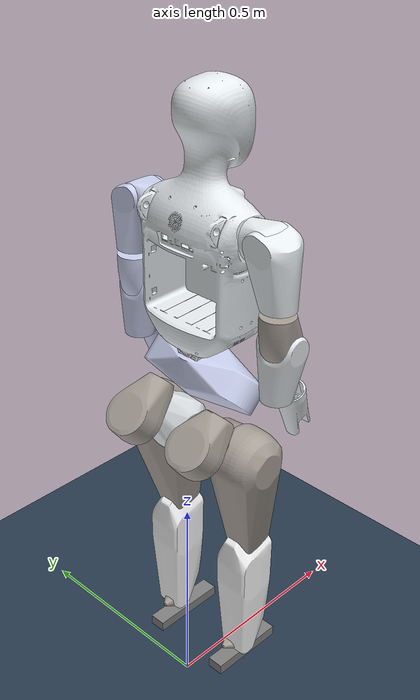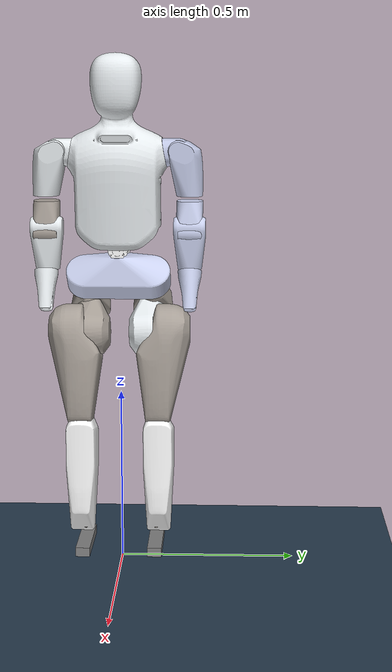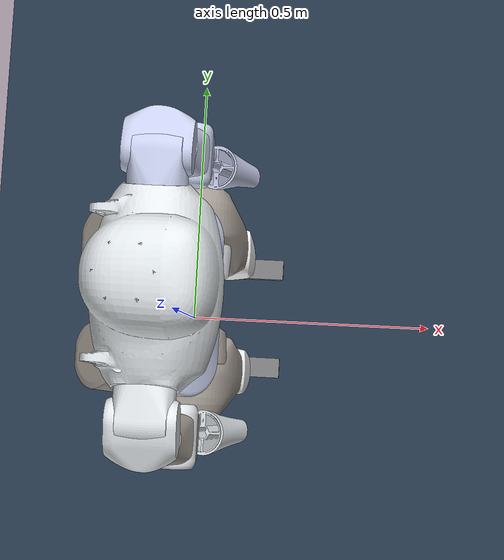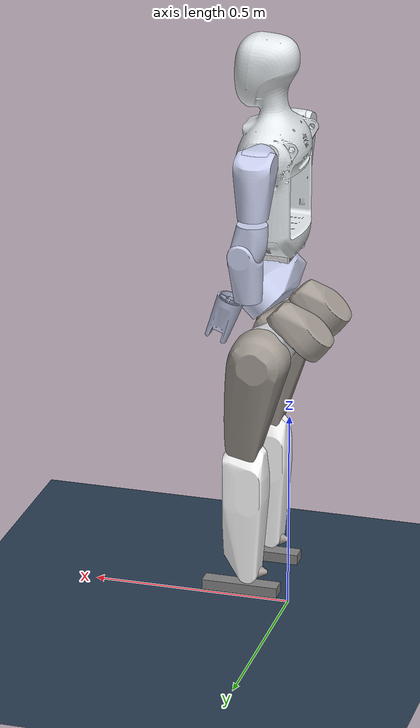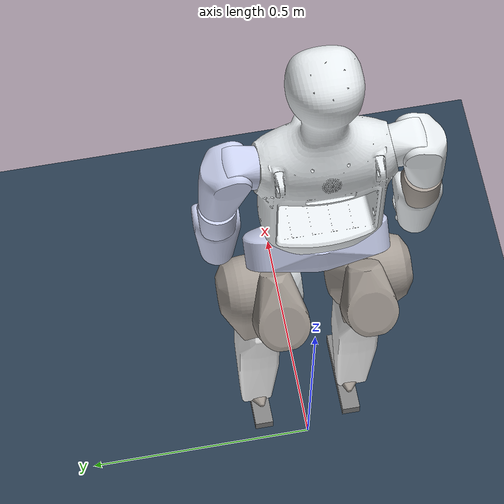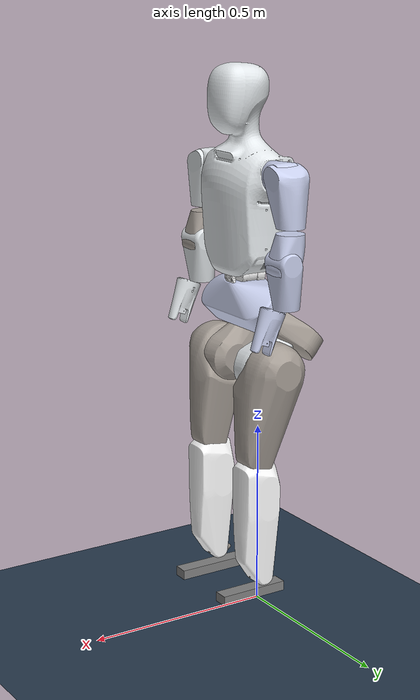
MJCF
<mujoco model="e1_v2_0826">
  <compiler angle="radian" meshdir="../meshes/"/>

  <default>
    <joint damping="0.001" armature="0.005" frictionloss="0.1"/>
  </default>

  <asset>
    <texture type="skybox" builtin="gradient" rgb1="0.3 0.5 0.7" rgb2="0 0 0" width="512" height="512"/>
    <texture name="texplane" type="2d" builtin="checker" rgb1=".2 .3 .4" rgb2=".1 0.15 0.2"
        width="512" height="512" mark="cross" markrgb=".8 .8 .8"/>

    <material name="matplane" reflectance="0." texture="texplane" texrepeat="1 1" texuniform="true"/>

    <mesh name="base_link" file="base_link.STL"/>
    <mesh name="waist_yaw_link" file="waist_yaw_link.STL"/>
    <mesh name="waist_roll_link" file="waist_roll_link.STL"/>
    <mesh name="l_arm_shoulder_pitch_link" file="l_arm_shoulder_pitch_link.STL"/>
    <mesh name="l_arm_shoulder_roll_link" file="l_arm_shoulder_roll_link.STL"/>
    <mesh name="l_arm_shoulder_yaw_link" file="l_arm_shoulder_yaw_link.STL"/>
    <mesh name="l_arm_elbow_pitch_link" file="l_arm_elbow_pitch_link.STL"/>
    <mesh name="l_arm_elbow_yaw_link" file="l_arm_elbow_yaw_link.STL"/>
    <mesh name="r_arm_shoulder_pitch_link" file="r_arm_shoulder_pitch_link.STL"/>
    <mesh name="r_arm_shoulder_roll_link" file="r_arm_shoulder_roll_link.STL"/>
    <mesh name="r_arm_shoulder_yaw_link" file="r_arm_shoulder_yaw_link.STL"/>
    <mesh name="r_arm_elbow_pitch_link" file="r_arm_elbow_pitch_link.STL"/>
    <mesh name="r_arm_elbow_yaw_link" file="r_arm_elbow_yaw_link.STL"/>
    <mesh name="l_leg_hip_yaw_link" file="l_leg_hip_yaw_link.STL"/>
    <mesh name="l_leg_hip_roll_link" file="l_leg_hip_roll_link.STL"/>
    <mesh name="l_leg_hip_pitch_link" file="l_leg_hip_pitch_link.STL"/>
    <mesh name="l_leg_knee_link" file="l_leg_knee_link.STL"/>
    <mesh name="l_leg_ankle_pitch_link" file="l_leg_ankle_pitch_link.STL"/>
    <mesh name="l_leg_ankle_roll_link" file="l_leg_ankle_roll_link.STL"/>
    <mesh name="r_leg_hip_yaw_link" file="r_leg_hip_yaw_link.STL"/>
    <mesh name="r_leg_hip_roll_link" file="r_leg_hip_roll_link.STL"/>
    <mesh name="r_leg_hip_pitch_link" file="r_leg_hip_pitch_link.STL"/>
    <mesh name="r_leg_knee_link" file="r_leg_knee_link.STL"/>
    <mesh name="r_leg_ankle_pitch_link" file="r_leg_ankle_pitch_link.STL"/>
    <mesh name="r_leg_ankle_roll_link" file="r_leg_ankle_roll_link.STL"/>
  </asset>

  <worldbody>
    <light directional="true" diffuse=".4 .4 .4" specular="0.1 0.1 0.1" pos="0 0 5.0" dir="0 0 -1" castshadow="false"/>
    <light directional="true" diffuse=".6 .6 .6" specular="0.2 0.2 0.2" pos="0 0 4" dir="0 0 -1"/>
    <geom name="ground" type="plane" size="0 0 1" pos="0.001 0 0" quat="1 0 0 0" material="matplane" condim="1" conaffinity='15'/>

    <body name="base_link" pos='0.0 0 0.85'>
      <inertial pos="0.045615 0.00032608 -0.0032429" quat="0.65424 0.660369 -0.259353 0.261953" mass="2.6129" diaginertia="0.00744182 0.00566935 0.00257423"/>
      <geom type="mesh" rgba="0.79216 0.81961 0.93333 1" mesh="base_link"/>
      <freejoint name="root" />
      <site name='imu' size='0.01' pos='0.0 0 0.0'/>

      <body name="l_leg_hip_yaw_link" pos="0.026525 0.090371 -0.027966" quat="0.92387 0.00181982 0.382678 0.00439307">
        <inertial pos="-0.01683 2.7526e-05 -0.062092" quat="0.999962 0.00828307 -0.00276939 -0.000263303" mass="1.2993" diaginertia="0.00217413 0.00126313 0.00115234"/>
        <joint name="l_leg_hip_yaw_joint" pos="0 0 0" axis="0 0 1" range="-0.7 0.93" actuatorfrcrange="-90 90"/>
        <geom type="mesh" rgba="0.65098 0.61961 0.58824 1" mesh="l_leg_hip_yaw_link"/>
        <body name="l_leg_hip_roll_link" pos="0.007 0 -0.08">
          <inertial pos="0.079567 -0.016381 -8.1494e-05" quat="0.493197 0.503538 0.505463 0.497708" mass="1.8503" diaginertia="0.00376549 0.00231015 0.00180926"/>
          <joint name="l_leg_hip_roll_joint" pos="0 0 0" axis="1 0 0" range="-0.7 0.61" actuatorfrcrange="-90 90"/>
          <geom type="mesh" rgba="0.89804 0.91765 0.92941 1" mesh="l_leg_hip_roll_link"/>
          <body name="l_leg_hip_pitch_link" pos="0.094 0 0" quat="0.923869 -0.00181973 -0.38268 -0.00439321">
            <inertial pos="0.011507 0.04474 -0.037718" quat="0.707906 -0.0785236 -0.0580346 0.699525" mass="3.5442" diaginertia="0.0183303 0.0152356 0.00375747"/>
            <joint name="l_leg_hip_pitch_joint" pos="0 0 0" axis="0 1 0" range="-1.48 0.87" actuatorfrcrange="-150 150"/>
            <geom type="mesh" rgba="0.65098 0.61961 0.58824 1" mesh="l_leg_hip_pitch_link"/>
            <body name="l_leg_knee_link" pos="0.022273 0.0018581 -0.25402">
              <inertial pos="0.012366 0.012267 -0.12535" quat="0.701176 -0.00640104 -0.00224653 0.712956" mass="1.9982" diaginertia="0.0132255 0.0129657 0.000901"/>
              <joint name="l_leg_knee_joint" pos="0 0 0" axis="0 1 0" range="0 2.36" actuatorfrcrange="-150 150"/>
              <geom type="mesh" rgba="1 1 1 1" mesh="l_leg_knee_link"/>
              <body name="l_leg_ankle_pitch_link" pos="0 0.011101 -0.31494">
                <inertial pos="-0.0042459 -2.9621e-05 0.0001542" quat="-0.00474517 0.704254 -9.92728e-06 0.709932" mass="0.13094" diaginertia="2.88453e-05 2.1919e-05 1.37787e-05"/>
                <joint name="l_leg_ankle_pitch_joint" pos="0 0 0" axis="0 1 0" range="-1.01 0.42" actuatorfrcrange="-140 140"/>
                <geom type="mesh" rgba="0.65098 0.61961 0.58824 1" mesh="l_leg_ankle_pitch_link"/>
                <body name="l_leg_ankle_roll_link">
                  <inertial pos="0.015069 0.00033786 -0.034836" quat="-0.00468015 0.707465 7.0167e-05 0.706733" mass="0.66053" diaginertia="0.0012586 0.00118304 0.000240326"/>
                  <joint name="l_leg_ankle_roll_joint" pos="0 0 0" axis="1 0 0" range="-0.26 0.26" actuatorfrcrange="-70 70"/>
                  <geom type="box" size="0.095 0.02 0.013" pos="0.028 0 -0.045"/>
                </body>
              </body>
            </body>
          </body>
        </body>
      </body>
      <body name="r_leg_hip_yaw_link" pos="0.027735 -0.0896213 -0.0291765" quat="0.923869 0.00181973 0.382679 0.00439322">
        <inertial pos="-0.01683 -2.7533e-05 -0.062087" quat="0.999962 -0.00828307 -0.00276939 0.000263303" mass="1.2993" diaginertia="0.00217413 0.00126313 0.00115234"/>
        <joint name="r_leg_hip_yaw_joint" pos="0 0 0" axis="0 0 1" range="-0.93 0.7" actuatorfrcrange="-90 90"/>
        <geom type="mesh" rgba="0.65098 0.61961 0.58824 1" mesh="r_leg_hip_yaw_link"/>
        <body name="r_leg_hip_roll_link" pos="0.007 0 -0.08">
          <inertial pos="0.079567 0.016381 7.4214e-05" quat="0.497708 0.505463 0.503538 0.493197" mass="1.8503" diaginertia="0.00376549 0.00231015 0.00180926"/>
          <joint name="r_leg_hip_roll_joint" pos="0 0 0" axis="1 0 0" range="-0.61 0.7" actuatorfrcrange="-90 90"/>
          <geom type="mesh" rgba="0.65098 0.61961 0.58824 1" mesh="r_leg_hip_roll_link"/>
          <body name="r_leg_hip_pitch_link" pos="0.094 0 0" quat="0.923864 -0.00363828 -0.382602 -0.00878529">
            <inertial pos="0.012103 -0.044077 -0.038304" quat="0.699525 -0.0580346 -0.0785236 0.707906" mass="3.5442" diaginertia="0.0183303 0.0152356 0.00375747"/>
            <joint name="r_leg_hip_pitch_joint" pos="0 0 0" axis="0 1 0" range="-1.48 0.87" actuatorfrcrange="-150 150"/>
            <geom type="mesh" rgba="0.65098 0.61961 0.58824 1" mesh="r_leg_hip_pitch_link"/>
            <body name="r_leg_knee_link" pos="0.022273 0.0018581 -0.25402">
              <inertial pos="0.012518 -0.010412 -0.1255" quat="0.712956 -0.00224653 -0.00640104 0.701176" mass="1.9982" diaginertia="0.0132255 0.0129657 0.000901"/>
              <joint name="r_leg_knee_joint" pos="0 0 0" axis="0 1 0" range="0 2.36" actuatorfrcrange="-150 150"/>
              <geom type="mesh" rgba="1 1 1 1" mesh="r_leg_knee_link"/>
              <body name="r_leg_ankle_pitch_link" pos="0 -0.0068638 -0.31505">
                <inertial pos="-0.0042459 -2.9539e-05 0.0001483" quat="0.00474517 0.704254 9.92728e-06 0.709932" mass="0.13094" diaginertia="2.88453e-05 2.1919e-05 1.37787e-05"/>
                <joint name="r_leg_ankle_pitch_joint" pos="0 0 0" axis="0 1 0" range="-1.01 0.42" actuatorfrcrange="-140 140"/>
                <geom type="mesh" rgba="0.65098 0.61961 0.58824 1" mesh="r_leg_ankle_pitch_link"/>
                <body name="r_leg_ankle_roll_link">
                  <inertial pos="0.015069 0.00033325 -0.034836" quat="0.00468015 0.707465 -7.0167e-05 0.706733" mass="0.66053" diaginertia="0.0012586 0.00118304 0.000240326"/>
                  <joint name="r_leg_ankle_roll_joint" pos="0 0 0" axis="1 0 0" range="-0.26 0.26" actuatorfrcrange="-70 70"/>
                  <geom type="box" size="0.095 0.02 0.013" pos="0.028 0 -0.045"/>
                </body>
              </body>
            </body>
          </body>
        </body>
      </body>

      <body name="waist_yaw_link" pos="0.042082 -3.0923e-05 0.04668">
        <inertial pos="0.00470328 -0.00134935 0.19264" quat="0.999991 -0.00296513 -0.000104353 0.00305202" mass="7.01524" diaginertia="0.0582413 0.0425893 0.0254607"/>
        <geom type="mesh" rgba="1 1 1 1" mesh="waist_yaw_link"/>
        <geom pos="0 -0.00026902 0.039999" type="mesh" rgba="0.89804 0.91765 0.92941 1" mesh="waist_roll_link"/>
        <body name="l_arm_shoulder_pitch_link" pos="-0.00025665 0.110621 0.293009" quat="0.996491 0.0836367 -0.000280226 -0.00333875">
          <inertial pos="0.0012179 0.049159 9.5389e-05" quat="0.689293 0.72447 0.00362203 0.00224412" mass="0.60519" diaginertia="0.000385929 0.00027066 0.000262501"/>
          <geom type="mesh" rgba="0.79216 0.81961 0.93333 1" mesh="l_arm_shoulder_pitch_link"/>
          <body name="l_arm_shoulder_roll_link" pos="0 0.058736 1.9787e-05" quat="0.996491 -0.0836299 0.000832777 -0.00324532">
            <inertial pos="0.00085858 0.02873 -0.067547" quat="0.996669 0.0815347 0.00133303 -0.000821021" mass="0.77242" diaginertia="0.000956024 0.000821691 0.000383624"/>
            <geom type="mesh" rgba="0.79216 0.81961 0.93333 1" mesh="l_arm_shoulder_roll_link"/>
            <body name="l_arm_shoulder_yaw_link" pos="-0.00019379 0.031249 -0.11952">
              <inertial pos="0.0096803 0.0020931 -0.068378" quat="0.694392 -0.108019 -0.0848415 0.706366" mass="0.79467" diaginertia="0.000898242 0.000744209 0.000324249"/>
              <geom type="mesh" rgba="0.79216 0.81961 0.93333 1" mesh="l_arm_shoulder_yaw_link"/>
              <body name="l_arm_elbow_pitch_link" pos="0.020009 0.00055819 -0.092727">
                <inertial pos="0.013346 0.0014827 -0.068092" quat="0.693156 -0.116015 -0.0875376 0.705983" mass="0.72318" diaginertia="0.000617961 0.000544828 0.000293612"/>
                <geom type="mesh" rgba="0.79216 0.81961 0.93333 1" mesh="l_arm_elbow_pitch_link"/>
                <body name="l_arm_elbow_yaw_link" pos="0.028695 0.0010196 -0.10805" quat="0.984787 0.00389387 -0.1737 0.00272724">
                  <inertial pos="0.00059159 0.00022963 -0.068276" quat="0.999956 -0.000406738 -0.00936504 0.000751184" mass="0.45462" diaginertia="0.000708258 0.0006844 0.000171801"/>
                  <geom type="mesh" rgba="0.79216 0.81961 0.93333 1" mesh="l_arm_elbow_yaw_link"/>
                </body>
              </body>
            </body>
          </body>
        </body>
        <body name="r_arm_shoulder_pitch_link" pos="-0.00025665 -0.111159 0.293009" quat="0.996491 -0.0836367 -0.000280226 0.00333875">
          <inertial pos="0.0012179 -0.049159 9.5389e-05" quat="0.72447 0.689293 -0.00224412 -0.00362203" mass="0.60519" diaginertia="0.000385929 0.00027066 0.000262501"/>
          <geom type="mesh" rgba="0.89804 0.91765 0.92941 1" mesh="r_arm_shoulder_pitch_link"/>
          <body name="r_arm_shoulder_roll_link" pos="0 -0.058736 1.9787e-05" quat="0.996491 0.0836336 0.000280204 -0.00333872">
            <inertial pos="0.00085858 -0.02873 -0.067547" quat="0.996669 -0.0815347 0.00133303 0.000821021" mass="0.77242" diaginertia="0.000956024 0.000821691 0.000383624"/>
            <geom type="mesh" rgba="0.89804 0.91765 0.92941 1" mesh="r_arm_shoulder_roll_link"/>
            <body name="r_arm_shoulder_yaw_link" pos="0.00021568 -0.029638 -0.11993">
              <inertial pos="0.0097016 -0.0010428 -0.068399" quat="0.706366 -0.0848415 -0.108019 0.694392" mass="0.79467" diaginertia="0.000898242 0.000744209 0.000324249"/>
              <geom type="mesh" rgba="0.65098 0.61961 0.58824 1" mesh="r_arm_shoulder_yaw_link"/>
              <body name="r_arm_elbow_pitch_link" pos="0.020006 0.0009581 -0.092726">
                <inertial pos="0.01336 -0.00038745 -0.068104" quat="0.705983 -0.0875376 -0.116015 0.693156" mass="0.72318" diaginertia="0.000617961 0.000544828 0.000293612"/>
                <geom type="mesh" rgba="0.89804 0.91765 0.92941 1" mesh="r_arm_elbow_pitch_link"/>
                <body name="r_arm_elbow_yaw_link" pos="0.028698 0.00081968 -0.10805" quat="0.984787 0.00389688 -0.1737 0.00272725">
                  <inertial pos="0.00059189 -0.00022947 -0.068277" quat="0.999956 0.000406738 -0.00936504 -0.000751184" mass="0.45462" diaginertia="0.000708258 0.0006844 0.000171801"/>
                  <geom type="mesh" rgba="0.89804 0.91765 0.92941 1" mesh="r_arm_elbow_yaw_link"/>
                </body>
              </body>
            </body>
          </body>
        </body>
      </body>
    </body>
  </worldbody>

  <actuator>
    <motor name='l_leg_hip_yaw'    	    joint='l_leg_hip_yaw_joint'/>
    <motor name='l_leg_hip_roll'    	  joint='l_leg_hip_roll_joint'/>
    <motor name='l_leg_hip_pitch'    	  joint='l_leg_hip_pitch_joint'/>
    <motor name='l_leg_knee'    	      joint='l_leg_knee_joint'/>
    <motor name='l_leg_ankle_pitch'     joint='l_leg_ankle_pitch_joint'/>
    <motor name='l_leg_ankle_roll'      joint='l_leg_ankle_roll_joint'/>

    <motor name='r_leg_hip_yaw'    	    joint='r_leg_hip_yaw_joint'/>
    <motor name='r_leg_hip_roll'    	  joint='r_leg_hip_roll_joint'/>
    <motor name='r_leg_hip_pitch'    	  joint='r_leg_hip_pitch_joint'/>
    <motor name='r_leg_knee'    	      joint='r_leg_knee_joint'/>
    <motor name='r_leg_ankle_pitch'     joint='r_leg_ankle_pitch_joint'/>
    <motor name='r_leg_ankle_roll'      joint='r_leg_ankle_roll_joint'/>

  </actuator>

  <sensor>
      <framequat     name='orientation' objtype='site' noise='0.001' objname='imu'/>
      <framepos      name='position' objtype='site' noise='0.001' objname='imu'/>
      <gyro          name='angular-velocity'    site='imu' noise='0.005' cutoff='34.9'/>
      <velocimeter   name='linear-velocity'     site='imu' noise='0.001' cutoff='30'/>
  </sensor>

</mujoco>
